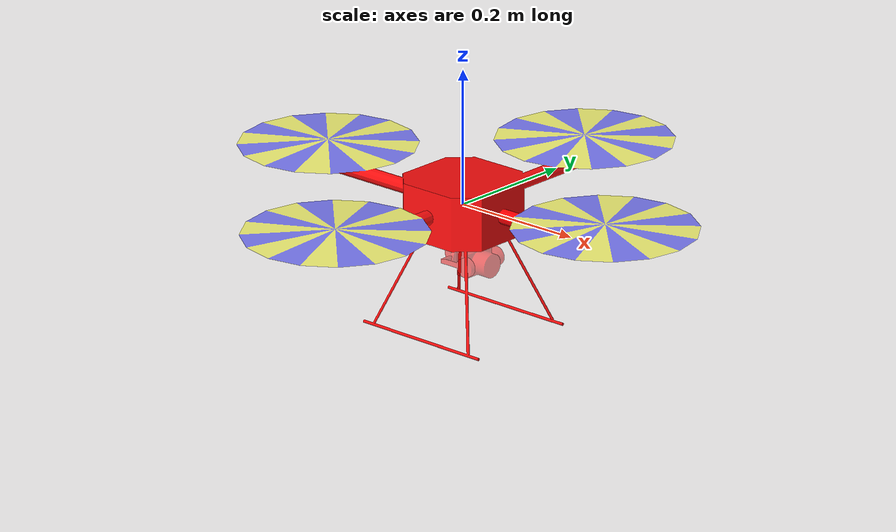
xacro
<?xml version="1.0"?>

<robot name="quadrotor" xmlns:xacro="http://www.ros.org/wiki/xacro">

    <xacro:property name="M_PI" value="3.1415926535897931" />

    <!-- Included URDF Files -->
    <xacro:include filename="$(find hector_quadrotor_description)/urdf/quadrotor_base.urdf.xacro" />

    <!-- Instantiate quadrotor_base_macro once (has no parameters atm) -->
    <xacro:quadrotor_base_macro />

    <!-- Forward facing camera -->
    <xacro:include filename="$(find hector_sensors_description)/urdf/generic_camera.urdf.xacro" />
    <xacro:generic_camera name="front_cam" parent="base_link" ros_topic="camera/image" cam_info_topic="camera/camera_info" update_rate="10" res_x="320" res_y="240" image_format="R8G8B8" hfov="90">
      <origin xyz="0.05 0.0 -0.06" rpy="0 0 0"/>
    </xacro:generic_camera>

    <xacro:include filename="$(find dji_gimbal)/urdf/dji_gimbal.xacro" />
    <xacro:gimbal name="gimbal" parent="base_link">
      <origin xyz="0.00 0 -0.035" rpy="${M_PI} 0 ${M_PI}"/>
    </xacro:gimbal>
    <xacro:generic_camera name="gim_cam" parent="cam_pad" ros_topic="gim_camera/image" cam_info_topic="gim_camera/camera_info" update_rate="10" res_x="320" res_y="240" image_format="R8G8B8" hfov="90">
      <origin xyz="0.00 -0.025 0.00" rpy="${M_PI} 0 ${M_PI}"/>
    </xacro:generic_camera>

</robot>

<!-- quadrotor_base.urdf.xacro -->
<robot xmlns:xacro="http://www.ros.org/wiki/xacro">

  <xacro:property name="pi" value="3.1415926535897931" />

  <!-- Main quadrotor link -->
  <xacro:macro name="quadrotor_base_macro">
    <link name="base_link">
      <inertial>
        <mass value="1.477" />
        <origin xyz="0 0 0" />
        <inertia ixx="0.01152" ixy="0.0" ixz="0.0" iyy="0.01152" iyz="0.0" izz="0.0218" />
      </inertial>

      <visual>
        <origin xyz="0 0 0" rpy="0 0 0" />
        <geometry>
          <mesh filename="package://hector_quadrotor_description/meshes/quadrotor/quadrotor_base.dae"/>
        </geometry>
      </visual>

      <collision>
        <origin xyz="0 0 0" rpy="0 0 0" />
        <geometry>
          <mesh filename="package://hector_quadrotor_description/meshes/quadrotor/quadrotor_base.stl"/>
        </geometry>
      </collision>
    </link>

    <!-- Sonar height sensor -->

  </xacro:macro>
</robot>

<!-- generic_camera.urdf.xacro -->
<robot xmlns:xacro="http://www.ros.org/wiki/xacro">
  <xacro:arg name="simulator" default="gazebo"/>
  <xacro:property name="M_PI" value="3.1415926535897931" />

  <xacro:macro name="generic_camera" params="name parent *origin ros_topic cam_info_topic update_rate res_x res_y image_format hfov">
    <joint name="${name}_joint" type="fixed">
      <xacro:insert_block name="origin" />
      <parent link="${parent}"/>
      <child link="${name}_link"/>
    </joint>

    <link name="${name}_link">
    </link>

    <joint name="${name}_optical_joint" type="fixed">
      <origin xyz="0 0 0" rpy="${-M_PI/2} 0.0 ${-M_PI/2}" />
      <parent link="${name}_link" />
      <child link="${name}_optical_frame"/>
    </joint>

    <link name="${name}_optical_frame"/>
    <gazebo reference="${name}_link">
      <sensor type="camera" name="${name}_camera_sensor">
        <update_rate>${update_rate}</update_rate>
        <camera>
          <horizontal_fov>${hfov * M_PI/180.0}</horizontal_fov>
          <image>
            <format>${image_format}</format>
            <width>${res_x}</width>
            <height>${res_y}</height>
          </image>
          <clip>
            <near>0.01</near>
            <far>100</far>
          </clip>
        </camera>

        <xacro:if value="${'$(arg simulator)' == 'gazebo'}">
          <plugin name="${name}_camera_controller" filename="libgazebo_ros_camera.so">
            <cameraName>${name}</cameraName>
            <imageTopicName>${ros_topic}</imageTopicName>
            <cameraInfoTopicName>${cam_info_topic}</cameraInfoTopicName>
            <frameName>${name}_optical_frame</frameName>
          </plugin>
        </xacro:if>
      </sensor>
    </gazebo>
  </xacro:macro>

</robot>

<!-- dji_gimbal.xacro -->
<robot xmlns:xacro="http://www.ros.org/wiki/xacro">

  <xacro:property name="PI" value="3.1415926535897931" />
  <xacro:property name="PI2" value="${PI/2}" />
  <xacro:property name="PI4" value="${PI2/2}" />

  <xacro:macro name="gimbal" params="name parent *origin">
    <link name="base">
        <collision>
          <origin xyz="0 0 0" rpy="0 0 0"/>
          <geometry>
            <box size="0.02 0.02 0.008"/>
          </geometry>
        </collision>

        <inertial>
          <origin xyz="0 0 0" rpy="0 0 0"/>
          <mass value="0.01"/>
          <inertia ixx="0.01"  ixy="0"  ixz="0" iyy="0.01" iyz="0" izz="0.01"/>
        </inertial>

        <visual>
          <geometry>
            <box size="0.02 0.02 0.008"/>
          </geometry>
          <material name="blue">
            <color rgba="0 0 1 0.5"/>
          </material>
        </visual>
    </link>
 <gazebo reference="base">
            <material>Gazebo/Grey</material>
        </gazebo>

    <link name="top_link">
      <collision>
        <origin xyz="0 0 0" rpy="0 0 0"/>
        <geometry>
          <box size="0.01 0.01 0.01"/>
        </geometry>
      </collision>

      <inertial>
        <origin xyz="0 0 0" rpy="0 0 0"/>
        <mass value="0.01"/>
        <inertia ixx="0.01"  ixy="0"  ixz="0" iyy="0.01" iyz="0" izz="0.01"/>
      </inertial>

      <visual>
        <geometry>
          <mesh filename="package://dji_gimbal/meshes/top.dae"/>
        </geometry>
        <material name="red">
          <color rgba="1 0 0 0.5"/>
        </material>
      </visual>
    </link>

    <link name="back_link">
      <collision>
        <geometry>
          <box size="0.01 0.01 0.01"/>
        </geometry>
      </collision>

      <inertial>
        <origin xyz="0 0 0" rpy="0 0 0"/>
        <mass value="0.01"/>
        <inertia ixx="0.01"  ixy="0"  ixz="0" iyy="0.01" iyz="0" izz="0.01"/>
      </inertial>

      <visual>
        <geometry>
          <mesh filename="package://dji_gimbal/meshes/back.dae"/>
        </geometry>
        <origin xyz="0 0 0.02375" rpy="${-PI2} 0 ${PI2}"/>
        <material name="red">
          <color rgba="1 0 0 0.5"/>
        </material>
      </visual>
    </link>

    <link name="roll_link">
      <collision>
        <geometry>
          <box size="0.03 0.03 0.03"/>
        </geometry>
      </collision>

      <inertial>
        <origin xyz="0 0 0" rpy="0 0 0"/>
        <mass value="0.01"/>
        <inertia ixx="0.01"  ixy="0"  ixz="0" iyy="0.01" iyz="0" izz="0.01"/>
      </inertial>

      <visual>
        <geometry>
          <box size="0.004 0.068 0.006"/>
        </geometry>
        <origin xyz="0 -0.001 -0.001" rpy="0 0 0"/>
        <material name="red">
          <color rgba="1 0 0 0.5"/>
        </material>
      </visual>
    </link>
 <gazebo reference="roll_link">
            <material>Gazebo/Blue</material>
        </gazebo>

    <link name="left_link">
      <collision>
        <geometry>
          <box size="0.03 0.03 0.03"/>
        </geometry>
      </collision>

      <inertial>
        <origin xyz="0 0 0" rpy="0 0 0"/>
        <mass value="0.01"/>
        <inertia ixx="0.01"  ixy="0"  ixz="0" iyy="0.01" iyz="0" izz="0.01"/>
      </inertial>

      <visual>
        <geometry>
          <mesh filename="package://dji_gimbal/meshes/leftsupport.dae"/>
        </geometry>
        <origin xyz="-.028 0 0" rpy="${PI2} 0 0"/>
        <material name="red">
          <color rgba="1 0 0 0.5"/>
        </material>
      </visual>
    </link>

    <link name="right_link">
      <collision>
        <geometry>
          <box size="0.03 0.03 0.03"/>
        </geometry>
      </collision>

      <inertial>
        <origin xyz="0 0 0" rpy="0 0 0"/>
        <mass value="0.01"/>
        <inertia ixx="0.01"  ixy="0"  ixz="0" iyy="0.01" iyz="0" izz="0.01"/>
      </inertial>

      <visual>
        <geometry>
          <mesh filename="package://dji_gimbal/meshes/rightsupport.dae"/>
        </geometry>
        <origin xyz="-.028 0 0" rpy="${PI2} 0 0"/>
        <material name="red">
          <color rgba="1 0 0 0.5"/>
        </material>
      </visual>
    </link>

    <link name="cam_pad">
      <collision>
        <geometry>
          <box size="0.03 0.03 0.03"/>
        </geometry>
      </collision>

      <inertial>
        <origin xyz="0 0 0" rpy="0 0 0"/>
        <mass value="0.01"/>
        <inertia ixx="0.01"  ixy="0"  ixz="0" iyy="0.01" iyz="0" izz="0.01"/>
      </inertial>

      <visual>
        <geometry>
          <mesh filename="package://dji_gimbal/meshes/camera.dae"/>
        </geometry>
        <origin xyz="0.020 -0.025 0" rpy="${-PI2} ${0} ${PI2}"/>
        <material name="red">
          <color rgba="1 0 0 0.5"/>
        </material>
      </visual>
    </link>
        <gazebo reference="cam_pad">
            <material>Gazebo/DarkGrey</material>
        </gazebo>

    <joint name="world_joint" type="fixed">

      <xacro:insert_block name="origin" />
      <parent link="${parent}"/>
      <child link="base"/>
    </joint>

    <joint name="yaw" type="continuous">
<limit effort="1000.0" velocity="10"/>
      <parent link="base"/>
      <child link="top_link"/>
      <axis xyz="0 0 1"/>
      <origin xyz="0 0 0.005"/>
    </joint>

    <joint name="top_to_back" type="fixed">

      <parent link="top_link"/>
      <child link="back_link"/>
      <origin xyz="0.022 0 0.009"/>
    </joint>

    <joint name="roll" type="continuous">
<limit effort="1000.0" velocity="10"/>
      <parent link="back_link"/>
      <child link="roll_link"/>
      <axis xyz="1 0 0"/>
      <origin xyz="-0.010 0.004 0.0325"/>
    </joint>

    <joint name="roll_to_leftsupport" type="fixed">

      <parent link="roll_link"/>
      <child link="left_link"/>
      <origin xyz=".001 -0.028 -.001"/>
    </joint>

    <joint name="roll_to_rightsupport" type="fixed">

      <parent link="roll_link"/>
      <child link="right_link"/>
      <origin xyz=".001 0.034 -.001"/>
    </joint>

    <joint name="pitch" type="continuous">
      <limit effort="1000.0" velocity="10"/>
      <parent link="right_link"/>
      <child link="cam_pad"/>
      <axis xyz="0 1 0"/>
      <origin xyz="-0.043 -0.012 0"/>
    </joint>

  <transmission name="tran_yaw">
    <type>transmission_interface/SimpleTransmission</type>
    <joint name="yaw">
      <hardwareInterface>hardware_interface/EffortJointInterface</hardwareInterface>
    </joint>
    <actuator name="motor1">
      <hardwareInterface>hardware_interface/EffortJointInterface</hardwareInterface>
      <mechanicalReduction>1</mechanicalReduction>
    </actuator>
  </transmission>

  <transmission name="tran_pitch">
    <type>transmission_interface/SimpleTransmission</type>
    <joint name="pitch">
      <hardwareInterface>hardware_interface/EffortJointInterface</hardwareInterface>
    </joint>
    <actuator name="motor2">
      <hardwareInterface>hardware_interface/EffortJointInterface</hardwareInterface>
      <mechanicalReduction>1</mechanicalReduction>
    </actuator>
  </transmission>

  <transmission name="tran_roll">
    <type>transmission_interface/SimpleTransmission</type>
    <joint name="roll">
      <hardwareInterface>hardware_interface/EffortJointInterface</hardwareInterface>
    </joint>
    <actuator name="motor3">
      <hardwareInterface>hardware_interface/EffortJointInterface</hardwareInterface>
      <mechanicalReduction>1</mechanicalReduction>
    </actuator>
  </transmission>

  <gazebo>
   <plugin name="gimbal_gazebo_ros_control" filename="libgazebo_ros_control.so">
     <robotNamespace>/dji_gimbal</robotNamespace>
   </plugin>
  </gazebo>

</xacro:macro>
</robot>
